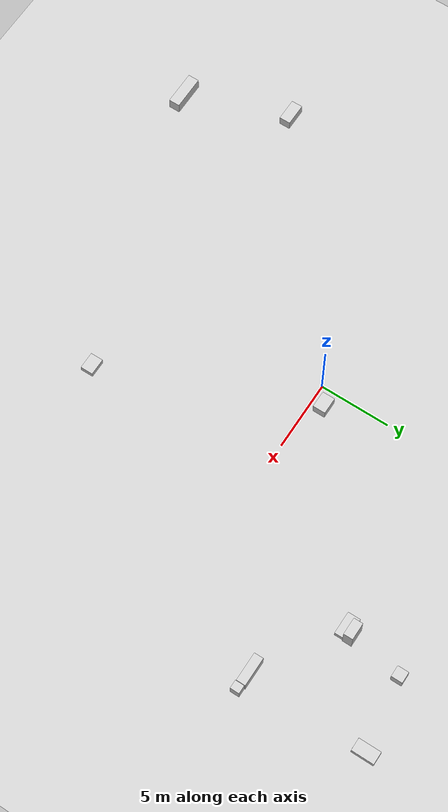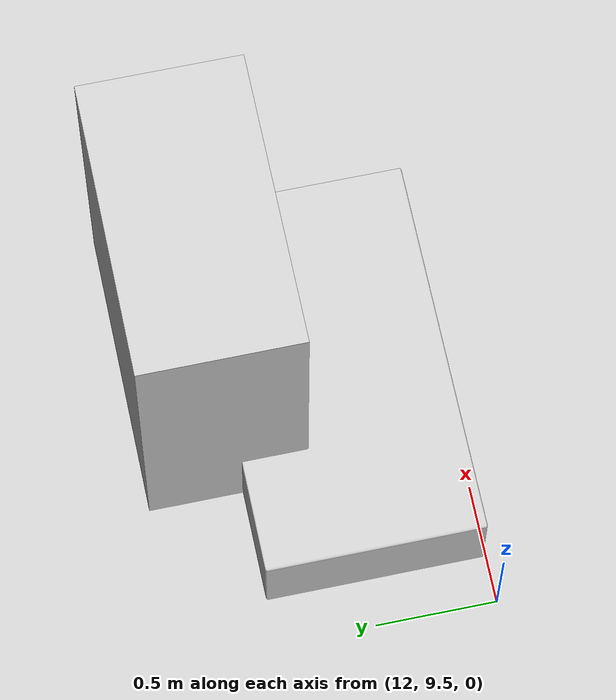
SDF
<?xml version="1.0"?>
<sdf version="1.4">
  <world name="mountain_world">
    <physics type="ode">
     <max_step_size>0.001</max_step_size>
    </physics>

    <scene>
      <sky>
        <clouds>
          <speed>12</speed>
        </clouds>
      </sky>
    </scene>

    <gui>
      <camera name="my_camera">
        <pose>3 0.1 1.5 0 0 3.14</pose>
      </camera>
    </gui>

    <include>
      <uri>model://sun</uri>
    </include>

    <include>
      <name>ground</name>
      <uri>model://ground</uri>
  <pose>0 0 0 0 0 0</pose>
    </include>

    <include>
      <name>fridge</name>
      <uri>model://fridge</uri>
      <pose>19.99 6.41 0 0 0 0</pose>
    </include>

 <include>
      <name>oven</name>
      <uri>model://oven</uri>
      <pose>11.99 14.99 0 0 0 0</pose>
    </include>

  <include>
      <name>sink</name>
      <uri>model://sink</uri>
      <pose>19.02 10.99 0 0 0 0</pose>
    </include>
 <include>
      <name>table_1</name>
      <uri>model://table_1</uri>
      <pose>18.99 14.99 0 0 0 0</pose>
    </include>
 <include>
      <name>table_3</name>
      <uri>model://table_3</uri>
      <pose>15.99 12.99 0 0 0 0</pose>
    </include>

 <include>
      <name>table_4</name>
      <uri>model://table_4</uri>
      <pose>13 9.96 0 0 0 0</pose>
    </include>
 <include>
      <name>table_5</name>
      <uri>model://table_5</uri>
      <pose>6.99 -13.45 0 0 0 0</pose>
    </include>
 <include>
      <name>table_6</name>
      <uri>model://table_6</uri>
      <pose>-0.56 -0.5 0 0 0 0</pose>
    </include>

 <include>
      <name>table_7</name>
      <uri>model://table_7</uri>
      <pose>-13.99 -18.04 0 0 0 0</pose>
    </include>

 <include>
      <name>table_8</name>
      <uri>model://table_8</uri>
      <pose>-17.03 -16.61 0 0 0 0</pose>
    </include>
  </world>
</sdf>

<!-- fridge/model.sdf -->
<sdf version="1.5">
  <model name="fridge_model">
<static>
true
</static>
    <link name="fridge_link">
      <inertial>
        <mass>0.390</mass>
        <inertia>
          <ixx>0.00058</ixx>
          <ixy>0</ixy>
          <ixz>0</ixz>
          <iyy>0.00058</iyy>
          <iyz>0</iyz>
          <izz>0.00019</izz>
        </inertia>
      </inertial>
      <collision name="fridge_collision">
        <geometry>
          <mesh>
            <uri>model://fridge/meshes/Fridge.dae</uri>
          </mesh>
        </geometry>
        <surface>
          <friction>
            <ode>
              <mu>1.0</mu>
              <mu2>1.0</mu2>
            </ode>
          </friction>
          <contact>
            <ode>
              <kp>10000000.0</kp>
              <kd>1.0</kd>
              <min_depth>0.001</min_depth>
              <max_vel>0.1</max_vel>
            </ode>
          </contact>
        </surface>
      </collision>
      <visual name="fridge_visual">
        <geometry>
          <mesh>
            <uri>model://fridge/meshes/Fridge.dae</uri>
          </mesh>
        </geometry>
      </visual>
    </link>
  </model>
</sdf>

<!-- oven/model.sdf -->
<sdf version="1.5">
  <model name="oven_model">
<static>
true
</static>
    <link name="oven_link">
      <inertial>
        <mass>0.390</mass>
        <inertia>
          <ixx>0.00058</ixx>
          <ixy>0</ixy>
          <ixz>0</ixz>
          <iyy>0.00058</iyy>
          <iyz>0</iyz>
          <izz>0.00019</izz>
        </inertia>
      </inertial>
      <collision name="oven_collision">
        <geometry>
          <mesh>
            <uri>model://oven/meshes/oven.dae</uri>
          </mesh>
        </geometry>
        <surface>
          <friction>
            <ode>
              <mu>1.0</mu>
              <mu2>1.0</mu2>
            </ode>
          </friction>
          <contact>
            <ode>
              <kp>10000000.0</kp>
              <kd>1.0</kd>
              <min_depth>0.001</min_depth>
              <max_vel>0.1</max_vel>
            </ode>
          </contact>
        </surface>
      </collision>
      <visual name="oven_visual">
        <geometry>
          <mesh>
            <uri>model://oven/meshes/oven.dae</uri>
          </mesh>
        </geometry>
      </visual>
    </link>
  </model>
</sdf>

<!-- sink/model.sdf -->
<sdf version="1.5">
  <model name="sink_model">
<static>
true
</static>
    <link name="sink_link">
      <inertial>
        <mass>0.390</mass>
        <inertia>
          <ixx>0.00058</ixx>
          <ixy>0</ixy>
          <ixz>0</ixz>
          <iyy>0.00058</iyy>
          <iyz>0</iyz>
          <izz>0.00019</izz>
        </inertia>
      </inertial>
      <collision name="sink_collision">
        <geometry>
          <mesh>
            <uri>model://sink/meshes/sink.dae</uri>
          </mesh>
        </geometry>
        <surface>
          <friction>
            <ode>
              <mu>1.0</mu>
              <mu2>1.0</mu2>
            </ode>
          </friction>
          <contact>
            <ode>
              <kp>10000000.0</kp>
              <kd>1.0</kd>
              <min_depth>0.001</min_depth>
              <max_vel>0.1</max_vel>
            </ode>
          </contact>
        </surface>
      </collision>
      <visual name="sink_visual">
        <geometry>
          <mesh>
            <uri>model://sink/meshes/sink.dae</uri>
          </mesh>
        </geometry>
      </visual>
    </link>
  </model>
</sdf>

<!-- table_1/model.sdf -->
<sdf version="1.5">
  <model name="Table_1_model">
<static>
true
</static>
    <link name="Table_1_link">
      <inertial>
        <mass>0.390</mass>
        <inertia>
          <ixx>0.00058</ixx>
          <ixy>0</ixy>
          <ixz>0</ixz>
          <iyy>0.00058</iyy>
          <iyz>0</iyz>
          <izz>0.00019</izz>
        </inertia>
      </inertial>
      <collision name="Table_1_collision">
        <geometry>
          <mesh>
            <uri>model://table_1/meshes/Table_1.dae</uri>
          </mesh>
        </geometry>
        <surface>
          <friction>
            <ode>
              <mu>1.0</mu>
              <mu2>1.0</mu2>
            </ode>
          </friction>
          <contact>
            <ode>
              <kp>10000000.0</kp>
              <kd>1.0</kd>
              <min_depth>0.001</min_depth>
              <max_vel>0.1</max_vel>
            </ode>
          </contact>
        </surface>
      </collision>
      <visual name="Table_1_visual">
        <geometry>
          <mesh>
            <uri>model://table_1/meshes/Table_1.dae</uri>
          </mesh>
        </geometry>
      </visual>
    </link>
  </model>
</sdf>

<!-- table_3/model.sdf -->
<sdf version="1.5">
  <model name="Table_3_model">
<static>
true
</static>
    <link name="Table_3_link">
      <inertial>
        <mass>0.390</mass>
        <inertia>
          <ixx>0.00058</ixx>
          <ixy>0</ixy>
          <ixz>0</ixz>
          <iyy>0.00058</iyy>
          <iyz>0</iyz>
          <izz>0.00019</izz>
        </inertia>
      </inertial>
      <collision name="Table_3_collision">
        <geometry>
          <mesh>
            <uri>model://table_3/meshes/Table_3.dae</uri>
          </mesh>
        </geometry>
        <surface>
          <friction>
            <ode>
              <mu>1.0</mu>
              <mu2>1.0</mu2>
            </ode>
          </friction>
          <contact>
            <ode>
              <kp>10000000.0</kp>
              <kd>1.0</kd>
              <min_depth>0.001</min_depth>
              <max_vel>0.1</max_vel>
            </ode>
          </contact>
        </surface>
      </collision>
      <visual name="Table_3_visual">
        <geometry>
          <mesh>
            <uri>model://table_3/meshes/Table_3.dae</uri>
          </mesh>
        </geometry>
      </visual>
    </link>
  </model>
</sdf>

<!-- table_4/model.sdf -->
<sdf version="1.5">
  <model name="Table_4_model">
<static>
true
</static>
    <link name="Table_4_link">
      <inertial>
        <mass>0.390</mass>
        <inertia>
          <ixx>0.00058</ixx>
          <ixy>0</ixy>
          <ixz>0</ixz>
          <iyy>0.00058</iyy>
          <iyz>0</iyz>
          <izz>0.00019</izz>
        </inertia>
      </inertial>
      <collision name="Table_4_collision">
        <geometry>
          <mesh>
            <uri>model://table_4/meshes/Table_4.dae</uri>
          </mesh>
        </geometry>
        <surface>
          <friction>
            <ode>
              <mu>1.0</mu>
              <mu2>1.0</mu2>
            </ode>
          </friction>
          <contact>
            <ode>
              <kp>10000000.0</kp>
              <kd>1.0</kd>
              <min_depth>0.001</min_depth>
              <max_vel>0.1</max_vel>
            </ode>
          </contact>
        </surface>
      </collision>
      <visual name="Table_4_visual">
        <geometry>
          <mesh>
            <uri>model://table_4/meshes/Table_4.dae</uri>
          </mesh>
        </geometry>
      </visual>
    </link>
  </model>
</sdf>

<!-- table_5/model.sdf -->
<sdf version="1.5">
  <model name="Table_5_model">
<static>
true
</static>
    <link name="Table_5_link">
      <inertial>
        <mass>0.390</mass>
        <inertia>
          <ixx>0.00058</ixx>
          <ixy>0</ixy>
          <ixz>0</ixz>
          <iyy>0.00058</iyy>
          <iyz>0</iyz>
          <izz>0.00019</izz>
        </inertia>
      </inertial>
      <collision name="Table_5_collision">
        <geometry>
          <mesh>
            <uri>model://table_5/meshes/Table_5.dae</uri>
          </mesh>
        </geometry>
        <surface>
          <friction>
            <ode>
              <mu>1.0</mu>
              <mu2>1.0</mu2>
            </ode>
          </friction>
          <contact>
            <ode>
              <kp>10000000.0</kp>
              <kd>1.0</kd>
              <min_depth>0.001</min_depth>
              <max_vel>0.1</max_vel>
            </ode>
          </contact>
        </surface>
      </collision>
      <visual name="Table_5_visual">
        <geometry>
          <mesh>
            <uri>model://table_5/meshes/Table_5.dae</uri>
          </mesh>
        </geometry>
      </visual>
    </link>
  </model>
</sdf>

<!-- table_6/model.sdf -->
<sdf version="1.5">
  <model name="Table_6_model">
<static>
true
</static>
    <link name="Table_6_link">
      <inertial>
        <mass>0.390</mass>
        <inertia>
          <ixx>0.00058</ixx>
          <ixy>0</ixy>
          <ixz>0</ixz>
          <iyy>0.00058</iyy>
          <iyz>0</iyz>
          <izz>0.00019</izz>
        </inertia>
      </inertial>
      <collision name="Table_6_collision">
        <geometry>
          <mesh>
            <uri>model://table_6/meshes/Table_6.dae</uri>
          </mesh>
        </geometry>
        <surface>
          <friction>
            <ode>
              <mu>1.0</mu>
              <mu2>1.0</mu2>
            </ode>
          </friction>
          <contact>
            <ode>
              <kp>10000000.0</kp>
              <kd>1.0</kd>
              <min_depth>0.001</min_depth>
              <max_vel>0.1</max_vel>
            </ode>
          </contact>
        </surface>
      </collision>
      <visual name="Table_6_visual">
        <geometry>
          <mesh>
            <uri>model://table_6/meshes/Table_6.dae</uri>
          </mesh>
        </geometry>
      </visual>
    </link>
  </model>
</sdf>

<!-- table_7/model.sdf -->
<sdf version="1.5">
  <model name="Table_7_model">
<static>
true
</static>
    <link name="Table_7_link">
      <inertial>
        <mass>0.390</mass>
        <inertia>
          <ixx>0.00058</ixx>
          <ixy>0</ixy>
          <ixz>0</ixz>
          <iyy>0.00058</iyy>
          <iyz>0</iyz>
          <izz>0.00019</izz>
        </inertia>
      </inertial>
      <collision name="Table_7_collision">
        <geometry>
          <mesh>
            <uri>model://table_7/meshes/Table_7.dae</uri>
          </mesh>
        </geometry>
        <surface>
          <friction>
            <ode>
              <mu>1.0</mu>
              <mu2>1.0</mu2>
            </ode>
          </friction>
          <contact>
            <ode>
              <kp>10000000.0</kp>
              <kd>1.0</kd>
              <min_depth>0.001</min_depth>
              <max_vel>0.1</max_vel>
            </ode>
          </contact>
        </surface>
      </collision>
      <visual name="Table_7_visual">
        <geometry>
          <mesh>
            <uri>model://table_7/meshes/Table_7.dae</uri>
          </mesh>
        </geometry>
      </visual>
    </link>
  </model>
</sdf>

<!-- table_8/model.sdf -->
<sdf version="1.5">
  <model name="Table_8_model">
<static>
true
</static>
    <link name="Table_8_link">
      <inertial>
        <mass>0.390</mass>
        <inertia>
          <ixx>0.00058</ixx>
          <ixy>0</ixy>
          <ixz>0</ixz>
          <iyy>0.00058</iyy>
          <iyz>0</iyz>
          <izz>0.00019</izz>
        </inertia>
      </inertial>
      <collision name="Table_8_collision">
        <geometry>
          <mesh>
            <uri>model://table_8/meshes/Table_8.dae</uri>
          </mesh>
        </geometry>
        <surface>
          <friction>
            <ode>
              <mu>1.0</mu>
              <mu2>1.0</mu2>
            </ode>
          </friction>
          <contact>
            <ode>
              <kp>10000000.0</kp>
              <kd>1.0</kd>
              <min_depth>0.001</min_depth>
              <max_vel>0.1</max_vel>
            </ode>
          </contact>
        </surface>
      </collision>
      <visual name="Table_8_visual">
        <geometry>
          <mesh>
            <uri>model://table_8/meshes/Table_8.dae</uri>
          </mesh>
        </geometry>
      </visual>
    </link>
  </model>
</sdf>
